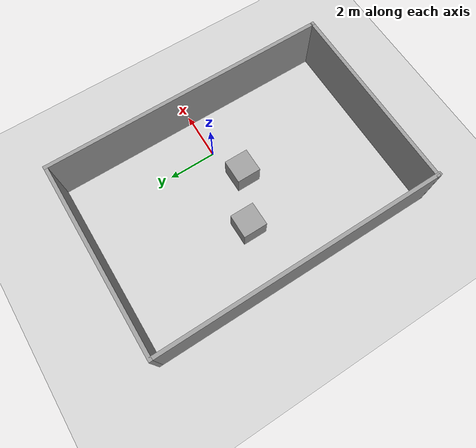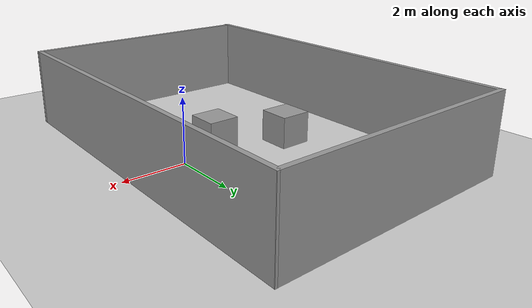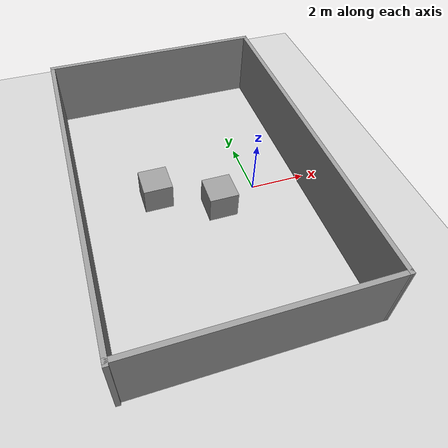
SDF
<sdf version="1.7">
 <world name="default">
  <light name="sun" type="directional">
   <pose>0 0 10 0 -0 0</pose>
   <diffuse>0.8 0.8 0.8 1</diffuse>
   <specular>0.2 0.2 0.2 1</specular>
   <attenuation>
    <range>1000</range>
    <constant>0.9</constant>
    <linear>0.01</linear>
    <quadratic>0.001</quadratic>
   </attenuation>
   <direction>-0.5 0.1 -0.9</direction>
   <spot><inner_angle>0</inner_angle><outer_angle>0</outer_angle><falloff>0</falloff></spot>
  </light>
  <model name="ground_plane">
   <static>1</static>
   <link name="link">
    <collision name="collision">
     <geometry><plane><normal>0 0 1</normal><size>100 100</size></plane></geometry>
     <surface>
      <contact><collide_bitmask>65535</collide_bitmask></contact>
      <friction><ode><mu>100</mu><mu2>50</mu2></ode></friction>
     </surface>
    </collision>
    <visual name="visual">
     <cast_shadows>0</cast_shadows>
     <geometry><plane><normal>0 0 1</normal><size>100 100</size></plane></geometry>
     <material>
      <script><uri>file://media/materials/scripts/gazebo.material</uri><name>Gazebo/Grey</name></script>
     </material>
    </visual>
   </link>
  </model>
  <gravity>0 0 -9.8</gravity>
  <magnetic_field>6e-06 2.3e-05 -4.2e-05</magnetic_field>
  <atmosphere type="adiabatic"/>
  <physics type="ode">
   <max_step_size>0.001</max_step_size>
   <real_time_factor>1</real_time_factor>
   <real_time_update_rate>1000</real_time_update_rate>
  </physics>
  <scene><ambient>0.4 0.4 0.4 1</ambient><background>0.7 0.7 0.7 1</background><shadows>1</shadows></scene>
  <spherical_coordinates>
   <surface_model>EARTH_WGS84</surface_model>
   <latitude_deg>0</latitude_deg>
   <longitude_deg>0</longitude_deg>
   <elevation>0</elevation>
   <heading_deg>0</heading_deg>
  </spherical_coordinates>
  <model name="8x12">
   <pose>-2.16222 -0.049057 0 0 -0 0</pose>
   <link name="Wall_20">
    <collision name="Wall_20_Collision">
     <geometry><box><size>12 0.15 2.5</size></box></geometry>
     <pose>0 0 1.25 0 -0 0</pose>
    </collision>
    <visual name="Wall_20_Visual">
     <pose>0 0 1.25 0 -0 0</pose>
     <geometry><box><size>12 0.15 2.5</size></box></geometry>
     <material>
      <script><uri>file://media/materials/scripts/gazebo.material</uri><name>Gazebo/Grey</name></script>
      <ambient>1 1 1 1</ambient>
     </material>
     <meta><layer>0</layer></meta>
    </visual>
    <pose>-3.92964 -0.035594 0 0 -0 -1.5708</pose>
   </link>
   <link name="Wall_22">
    <collision name="Wall_22_Collision">
     <geometry><box><size>8.00928 0.15 2.5</size></box></geometry>
     <pose>0 0 1.25 0 -0 0</pose>
    </collision>
    <visual name="Wall_22_Visual">
     <pose>0 0 1.25 0 -0 0</pose>
     <geometry><box><size>8.00928 0.15 2.5</size></box></geometry>
     <material>
      <script><uri>file://media/materials/scripts/gazebo.material</uri><name>Gazebo/Grey</name></script>
      <ambient>1 1 1 1</ambient>
     </material>
     <meta><layer>0</layer></meta>
    </visual>
    <pose>0 5.95902 0 0 -0 -0.000394</pose>
   </link>
   <link name="Wall_24">
    <collision name="Wall_24_Collision">
     <geometry><box><size>12 0.15 2.5</size></box></geometry>
     <pose>0 0 1.25 0 -0 0</pose>
    </collision>
    <visual name="Wall_24_Visual">
     <pose>0 0 1.25 0 -0 0</pose>
     <geometry><box><size>12 0.15 2.5</size></box></geometry>
     <material>
      <script><uri>file://media/materials/scripts/gazebo.material</uri><name>Gazebo/Grey</name></script>
      <ambient>1 1 1 1</ambient>
     </material>
     <meta><layer>0</layer></meta>
    </visual>
    <pose>3.92964 0.032471 0 0 -0 -1.5708</pose>
   </link>
   <link name="Wall_26">
    <collision name="Wall_26_Collision">
     <geometry><box><size>8.00928 0.15 2.5</size></box></geometry>
     <pose>0 0 1.25 0 -0 0</pose>
    </collision>
    <visual name="Wall_26_Visual">
     <pose>0 0 1.25 0 -0 0</pose>
     <geometry><box><size>8.00928 0.15 2.5</size></box></geometry>
     <material>
      <script><uri>file://media/materials/scripts/gazebo.material</uri><name>Gazebo/Grey</name></script>
      <ambient>1 1 1 1</ambient>
     </material>
     <meta><layer>0</layer></meta>
    </visual>
    <pose>0 -5.89098 0 0 -0 -0.000394</pose>
   </link>
   <static>1</static>
  </model>
  <model name="unit_box">
   <pose>-1.46006 -0.518938 0.499995 -1e-05 -0 0</pose>
   <link name="link">
    <inertial>
     <mass>1</mass>
     <inertia>
      <ixx>0.166667</ixx>
      <ixy>0</ixy>
      <ixz>0</ixz>
      <iyy>0.166667</iyy>
      <iyz>0</iyz>
      <izz>0.166667</izz>
     </inertia>
    </inertial>
    <collision name="collision"><geometry><box><size>1 1 1</size></box></geometry></collision>
    <visual name="visual">
     <geometry><box><size>1 1 1</size></box></geometry>
     <material>
      <script><name>Gazebo/Grey</name><uri>file://media/materials/scripts/gazebo.material</uri></script>
     </material>
    </visual>
   </link>
  </model>
  <model name="unit_box_0">
   <pose>-3.47391 0.480778 0.5 0 -0 0</pose>
   <link name="link">
    <inertial>
     <mass>1</mass>
     <inertia>
      <ixx>0.166667</ixx>
      <ixy>0</ixy>
      <ixz>0</ixz>
      <iyy>0.166667</iyy>
      <iyz>0</iyz>
      <izz>0.166667</izz>
     </inertia>
    </inertial>
    <collision name="collision"><geometry><box><size>1 1 1</size></box></geometry></collision>
    <visual name="visual">
     <geometry><box><size>1 1 1</size></box></geometry>
     <material>
      <script><name>Gazebo/Grey</name><uri>file://media/materials/scripts/gazebo.material</uri></script>
     </material>
    </visual>
   </link>
  </model>
 </world>
</sdf>
